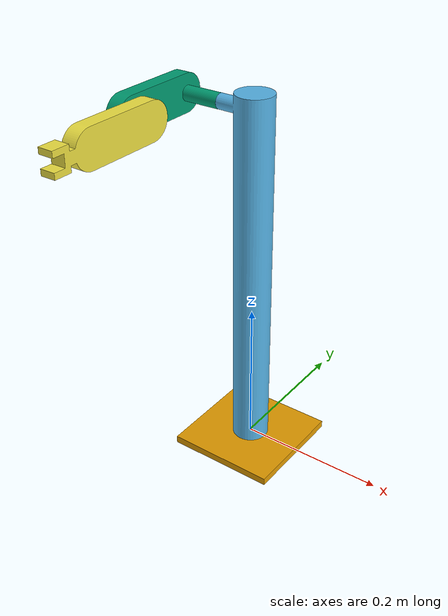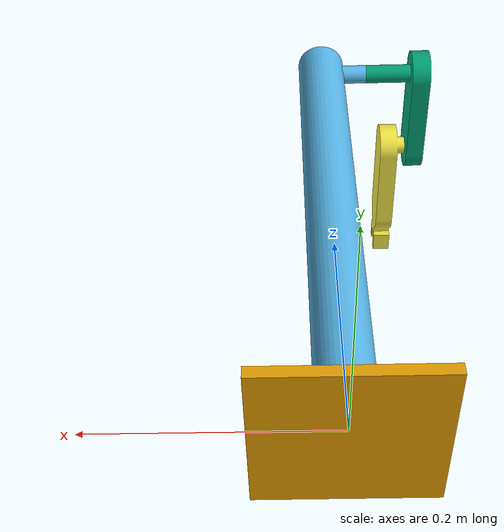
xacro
<?xml version="1.0" encoding="utf-8"?>
<robot name="scara1" xmlns:xacro="http://www.ros.org/wiki/xacro">

    <link name="base_link">
      <visual>
        <origin xyz="0 0 0" rpy="0 0 0"/>
        <geometry>
          <mesh scale="0.001 0.001 0.001" filename="package://rms_scara/meshes/scara1/scara1_base_link.stl"/>
        </geometry>
      </visual>
      <collision>
        <origin xyz="0 0 0" rpy="0 0 0"/>
        <geometry>
          <mesh scale="0.001 0.001 0.001" filename="package://rms_scara/meshes/scara1/scara1_base_link.stl"/>
        </geometry>
      </collision>
      <inertial>
        <origin xyz="0.0 0 0"/>
        <mass value="10000"/>
        <inertia ixx="0.0" ixy="0.0" ixz="0.0"
                 iyy="0.0" iyz="0.0"
                 izz="0.03"/>
      </inertial>
    </link>

    <joint name="joint1_joint" type="revolute">
      <origin xyz="0 0 0" rpy="0 0 0" />
      <parent link="base_link"/>
      <child link="joint1_link" />
      <axis xyz="0 0 1"/>
      <limit effort="1000.0" lower="-3.14" upper="3.14" velocity="0.5"/>
    </joint>

    <link name="joint1_link">
      <visual>
        <geometry>
         <mesh scale="0.001 0.001 0.001" filename="package://rms_scara/meshes/scara1/scara1_joint1.stl"/>
        </geometry>
        <origin xyz="0 0 0" rpy="0 0 0"/>
      </visual>
      <collision>
        <geometry>
         <mesh scale="0.001 0.001 0.001" filename="package://rms_scara/meshes/scara1/scara1_joint1.stl"/>
        </geometry>
        <origin xyz="0 0 0" rpy="0 0 0"/>
      </collision>
      <inertial>
        <origin xyz="0 0 0"/>
        <mass value="0.5"/>
        <inertia ixx="0.01" ixy="0.0" ixz="0.0"
                 iyy="0.01" iyz="0.0"
                 izz="0.03"/>
      </inertial>
    </link>

    <transmission name="trans_joint1_link">
      <type>transmission_interface/SimpleTransmission</type>
      <joint name="joint1_joint">
        <hardwareInterface>hardware_interface/EffortJointInterface</hardwareInterface>
      </joint>
      <actuator name="ac_joint1_link">
        <hardwareInterface>hardware_interface/EffortJointInterface</hardwareInterface>
        <mechanicalReduction>1</mechanicalReduction>
      </actuator>
    </transmission>

    <joint name="joint2_joint" type="revolute">
      <origin xyz="-0.05 0 0.48" rpy="0 0 0"/>
      <parent link="joint1_link"/>
      <child link="joint2_link" />
      <axis xyz="1 0 0"/>
      <limit effort="1000.0" lower="-2.8" upper="2.8" velocity="0.5"/>
    </joint>

    <link name="joint2_link">
      <visual>
        <geometry>
         <mesh scale="0.001 0.001 0.001" filename="package://rms_scara/meshes/scara1/scara1_joint2.stl"/>
        </geometry>
        <origin xyz="0 0 0" rpy="0 0 0"/>
      </visual>
      <collision>
        <geometry>
         <mesh scale="0.001 0.001 0.001" filename="package://rms_scara/meshes/scara1/scara1_joint2.stl"/>
        </geometry>
        <origin xyz="0 0 0" rpy="0 0 0"/>
      </collision>
      <inertial>
        <origin xyz="0.0 0 0"/>
        <mass value="0.5"/>
        <inertia ixx="0.01" ixy="0.0" ixz="0.0"
                 iyy="0.01" iyz="0.0"
                 izz="0.03"/>
      </inertial>
    </link>

    <transmission name="trans_joint2_link">
      <type>transmission_interface/SimpleTransmission</type>
      <joint name="joint2_joint">
        <hardwareInterface>hardware_interface/EffortJointInterface</hardwareInterface>
      </joint>
      <actuator name="ac_joint2_link">
        <hardwareInterface>hardware_interface/EffortJointInterface</hardwareInterface>
        <mechanicalReduction>1</mechanicalReduction>
      </actuator>
    </transmission>

    <joint name="joint3_joint" type="revolute">
      <origin xyz="-0.07 -0.1 0" rpy="0 0 0" />
      <parent link="joint2_link"/>
      <child link="joint3_link" />
      <axis xyz="1 0 0"/>
      <limit effort="1000.0" lower="-2.7" upper="2.7" velocity="0.5"/>
    </joint>
    <link name="joint3_link">
      <visual>
        <geometry>
         <mesh scale="0.001 0.001 0.001" filename="package://rms_scara/meshes/scara1/scara1_joint3.stl"/>
        </geometry>
        <origin xyz="0 0 0" rpy="0 0 0"/>
      </visual>
      <collision>
        <geometry>
         <mesh scale="0.001 0.001 0.001" filename="package://rms_scara/meshes/scara1/scara1_joint3.stl"/>
        </geometry>
        <origin xyz="0 0 0" rpy="0 0 0"/>
      </collision>
      <inertial>
        <origin xyz="0.0 0 0"/>
        <mass value="0.5"/>
        <inertia ixx="0.01" ixy="0.0" ixz="0.0"
                 iyy="0.01" iyz="0.0"
                 izz="0.03"/>
      </inertial>
    </link>

    <transmission name="trans_joint3_link">
      <type>transmission_interface/SimpleTransmission</type>
      <joint name="joint3_joint">
        <hardwareInterface>hardware_interface/EffortJointInterface</hardwareInterface>
      </joint>
      <actuator name="ac_joint3_link">
        <hardwareInterface>hardware_interface/EffortJointInterface</hardwareInterface>
        <mechanicalReduction>1</mechanicalReduction>
      </actuator>
    </transmission>

    <!-- Plugins -->
    <gazebo>
      <plugin name="gazebo_ros_control" filename="libgazebo_ros_control.so">
      </plugin>
      <robotNamespace>/rms</robotNamespace>
      <robotParam>/rms/robot_description</robotParam>
    </gazebo>

</robot>
